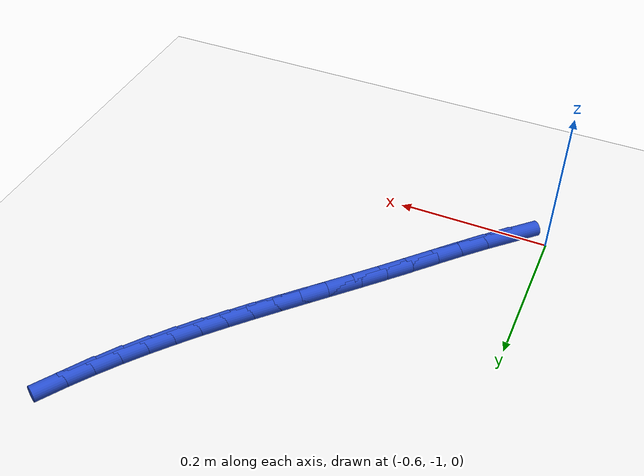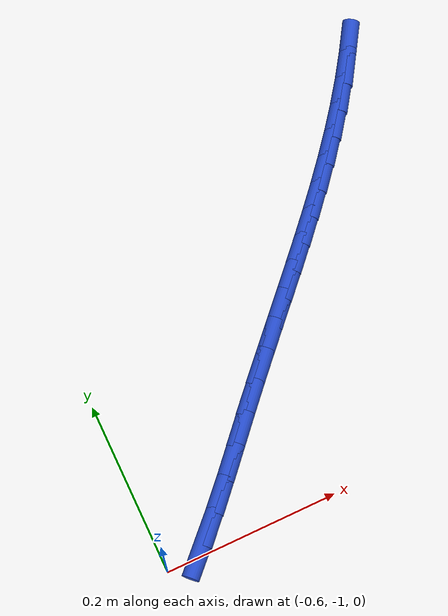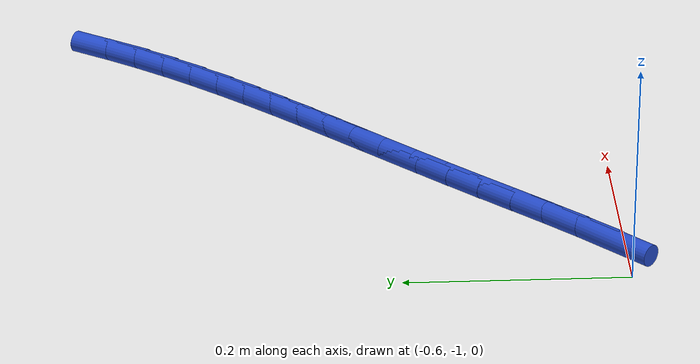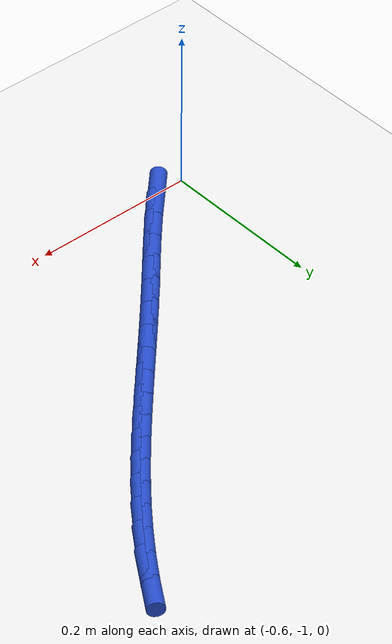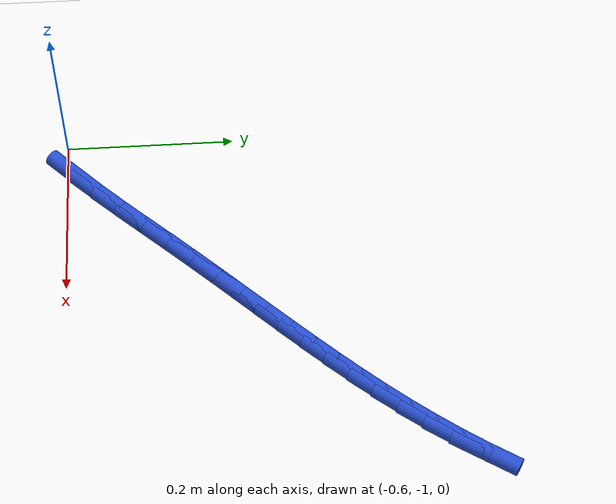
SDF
<sdf version="1.6">
 <world name="default">
  <model name="ground_plane">
   <static>1</static>
   <link name="link">
    <collision name="collision">
     <geometry><plane><normal>0 0 1</normal><size>100 100</size></plane></geometry>
     <surface><friction><ode><mu>100</mu><mu2>50</mu2></ode></friction></surface>
    </collision>
    <visual name="visual">
     <cast_shadows>0</cast_shadows>
     <geometry><plane><normal>0 0 1</normal><size>100 100</size></plane></geometry>
     <material>
      <script><uri>file://media/materials/scripts/gazebo.material</uri><name>Gazebo/WhiteGlow</name></script>
     </material>
    </visual>
   </link>
  </model>
  <model name="line">
   <link name="link_176">
    <pose>-0.553148774801126 -0.9895913982518283 0.01 0 1.57 0.789055926661078</pose>
    <collision name="collision">
     <geometry><cylinder><radius>0.01</radius><length>0.08</length></cylinder></geometry>
    </collision>
    <visual name="visual">
     <material>
      <script><name>Gazebo/Blue</name><uri>file://media/materials/scripts/gazebo.material</uri></script>
     </material>
     <geometry><cylinder><radius>0.01</radius><length>0.08</length></cylinder></geometry>
    </visual>
   </link>
   <link name="link_177">
    <pose>-0.5269440126837451 -0.9631942298673783 0.01 0 1.57 0.8157405186629065</pose>
    <collision name="collision">
     <geometry><cylinder><radius>0.01</radius><length>0.08</length></cylinder></geometry>
    </collision>
    <visual name="visual">
     <material>
      <script><name>Gazebo/Blue</name><uri>file://media/materials/scripts/gazebo.material</uri></script>
     </material>
     <geometry><cylinder><radius>0.01</radius><length>0.08</length></cylinder></geometry>
    </visual>
   </link>
   <link name="link_178">
    <pose>-0.5011537785038309 -0.9357894377863887 0.01 0 1.57 0.8311917817061939</pose>
    <collision name="collision">
     <geometry><cylinder><radius>0.01</radius><length>0.08</length></cylinder></geometry>
    </collision>
    <visual name="visual">
     <material>
      <script><name>Gazebo/Blue</name><uri>file://media/materials/scripts/gazebo.material</uri></script>
     </material>
     <geometry><cylinder><radius>0.01</radius><length>0.08</length></cylinder></geometry>
    </visual>
   </link>
   <link name="link_179">
    <pose>-0.47573677916401 -0.9079310593223773 0.01 0 1.57 0.8359364502381111</pose>
    <collision name="collision">
     <geometry><cylinder><radius>0.01</radius><length>0.08</length></cylinder></geometry>
    </collision>
    <visual name="visual">
     <material>
      <script><name>Gazebo/Blue</name><uri>file://media/materials/scripts/gazebo.material</uri></script>
     </material>
     <geometry><cylinder><radius>0.01</radius><length>0.08</length></cylinder></geometry>
    </visual>
   </link>
   <link name="link_180">
    <pose>-0.45065172156690925 -0.8801731317888614 0.01 0 1.57 0.830320876651542</pose>
    <collision name="collision">
     <geometry><cylinder><radius>0.01</radius><length>0.08</length></cylinder></geometry>
    </collision>
    <visual name="visual">
     <material>
      <script><name>Gazebo/Blue</name><uri>file://media/materials/scripts/gazebo.material</uri></script>
     </material>
     <geometry><cylinder><radius>0.01</radius><length>0.08</length></cylinder></geometry>
    </visual>
   </link>
   <link name="link_181">
    <pose>-0.42585983448793613 -0.8530473939803618 0.01 0 1.57 0.8215137054219757</pose>
    <collision name="collision">
     <geometry><cylinder><radius>0.01</radius><length>0.08</length></cylinder></geometry>
    </collision>
    <visual name="visual">
     <material>
      <script><name>Gazebo/Blue</name><uri>file://media/materials/scripts/gazebo.material</uri></script>
     </material>
     <geometry><cylinder><radius>0.01</radius><length>0.08</length></cylinder></geometry>
    </visual>
   </link>
   <link name="link_182">
    <pose>-0.40136422281092127 -0.8267153141503191 0.01 0 1.57 0.8158885460500058</pose>
    <collision name="collision">
     <geometry><cylinder><radius>0.01</radius><length>0.08</length></cylinder></geometry>
    </collision>
    <visual name="visual">
     <material>
      <script><name>Gazebo/Blue</name><uri>file://media/materials/scripts/gazebo.material</uri></script>
     </material>
     <geometry><cylinder><radius>0.01</radius><length>0.08</length></cylinder></geometry>
    </visual>
   </link>
   <link name="link_183">
    <pose>-0.37720248651012306 -0.8010333533230153 0.01 0 1.57 0.8138800317394935</pose>
    <collision name="collision">
     <geometry><cylinder><radius>0.01</radius><length>0.08</length></cylinder></geometry>
    </collision>
    <visual name="visual">
     <material>
      <script><name>Gazebo/Blue</name><uri>file://media/materials/scripts/gazebo.material</uri></script>
     </material>
     <geometry><cylinder><radius>0.01</radius><length>0.08</length></cylinder></geometry>
    </visual>
   </link>
   <link name="link_184">
    <pose>-0.3534132538091132 -0.7758488806934513 0.01 0 1.57 0.8156996197767824</pose>
    <collision name="collision">
     <geometry><cylinder><radius>0.01</radius><length>0.08</length></cylinder></geometry>
    </collision>
    <visual name="visual">
     <material>
      <script><name>Gazebo/Blue</name><uri>file://media/materials/scripts/gazebo.material</uri></script>
     </material>
     <geometry><cylinder><radius>0.01</radius><length>0.08</length></cylinder></geometry>
    </visual>
   </link>
   <link name="link_185">
    <pose>-0.3300351529314619 -0.7510092654566265 0.01 0 1.57 0.8215153244349632</pose>
    <collision name="collision">
     <geometry><cylinder><radius>0.01</radius><length>0.08</length></cylinder></geometry>
    </collision>
    <visual name="visual">
     <material>
      <script><name>Gazebo/Blue</name><uri>file://media/materials/scripts/gazebo.material</uri></script>
     </material>
     <geometry><cylinder><radius>0.01</radius><length>0.08</length></cylinder></geometry>
    </visual>
   </link>
   <link name="link_186">
    <pose>-0.3071068121007394 -0.7263618768075406 0.01 0 1.57 0.8314430489578826</pose>
    <collision name="collision">
     <geometry><cylinder><radius>0.01</radius><length>0.08</length></cylinder></geometry>
    </collision>
    <visual name="visual">
     <material>
      <script><name>Gazebo/Blue</name><uri>file://media/materials/scripts/gazebo.material</uri></script>
     </material>
     <geometry><cylinder><radius>0.01</radius><length>0.08</length></cylinder></geometry>
    </visual>
   </link>
   <link name="link_187">
    <pose>-0.2846668595405162 -0.7017540839411929 0.01 0 1.57 0.8455371200862486</pose>
    <collision name="collision">
     <geometry><cylinder><radius>0.01</radius><length>0.08</length></cylinder></geometry>
    </collision>
    <visual name="visual">
     <material>
      <script><name>Gazebo/Blue</name><uri>file://media/materials/scripts/gazebo.material</uri></script>
     </material>
     <geometry><cylinder><radius>0.01</radius><length>0.08</length></cylinder></geometry>
    </visual>
   </link>
   <link name="link_188">
    <pose>-0.26275392347436294 -0.6770332560525835 0.01 0 1.57 0.863780417106745</pose>
    <collision name="collision">
     <geometry><cylinder><radius>0.01</radius><length>0.08</length></cylinder></geometry>
    </collision>
    <visual name="visual">
     <material>
      <script><name>Gazebo/Blue</name><uri>file://media/materials/scripts/gazebo.material</uri></script>
     </material>
     <geometry><cylinder><radius>0.01</radius><length>0.08</length></cylinder></geometry>
    </visual>
   </link>
   <link name="link_189">
    <pose>-0.24140663212584967 -0.6520467623367118 0.01 0 1.57 0.8860749049505708</pose>
    <collision name="collision">
     <geometry><cylinder><radius>0.01</radius><length>0.08</length></cylinder></geometry>
    </collision>
    <visual name="visual">
     <material>
      <script><name>Gazebo/Blue</name><uri>file://media/materials/scripts/gazebo.material</uri></script>
     </material>
     <geometry><cylinder><radius>0.01</radius><length>0.08</length></cylinder></geometry>
    </visual>
   </link>
   <link name="link_190">
    <pose>-0.22066361371854784 -0.6266419719885782 0.01 0 1.57 0.9122338291461818</pose>
    <collision name="collision">
     <geometry><cylinder><radius>0.01</radius><length>0.08</length></cylinder></geometry>
    </collision>
    <visual name="visual">
     <material>
      <script><name>Gazebo/Blue</name><uri>file://media/materials/scripts/gazebo.material</uri></script>
     </material>
     <geometry><cylinder><radius>0.01</radius><length>0.08</length></cylinder></geometry>
    </visual>
   </link>
   <link name="link_191">
    <pose>-0.20056349647602745 -0.6006662542031822 0.01 0 1.57 0.9419771957382412</pose>
    <collision name="collision">
     <geometry><cylinder><radius>0.01</radius><length>0.08</length></cylinder></geometry>
    </collision>
    <visual name="visual">
     <material>
      <script><name>Gazebo/Blue</name><uri>file://media/materials/scripts/gazebo.material</uri></script>
     </material>
     <geometry><cylinder><radius>0.01</radius><length>0.08</length></cylinder></geometry>
    </visual>
   </link>
   <link name="link_192">
    <pose>-0.18114490862185903 -0.5739669781755233 0.01 0 1.57 0.9748075939004506</pose>
    <collision name="collision">
     <geometry><cylinder><radius>0.01</radius><length>0.08</length></cylinder></geometry>
    </collision>
    <visual name="visual">
     <material>
      <script><name>Gazebo/Blue</name><uri>file://media/materials/scripts/gazebo.material</uri></script>
     </material>
     <geometry><cylinder><radius>0.01</radius><length>0.08</length></cylinder></geometry>
    </visual>
   </link>
   <link name="link_193">
    <pose>-0.1624475203584311 -0.546400450519855 0.01 0 1.57 1.0086405223204629</pose>
    <collision name="collision">
     <geometry><cylinder><radius>0.01</radius><length>0.08</length></cylinder></geometry>
    </collision>
    <visual name="visual">
     <material>
      <script><name>Gazebo/Blue</name><uri>file://media/materials/scripts/gazebo.material</uri></script>
     </material>
     <geometry><cylinder><radius>0.01</radius><length>0.08</length></cylinder></geometry>
    </visual>
   </link>
  </model>
 </world>
</sdf>
